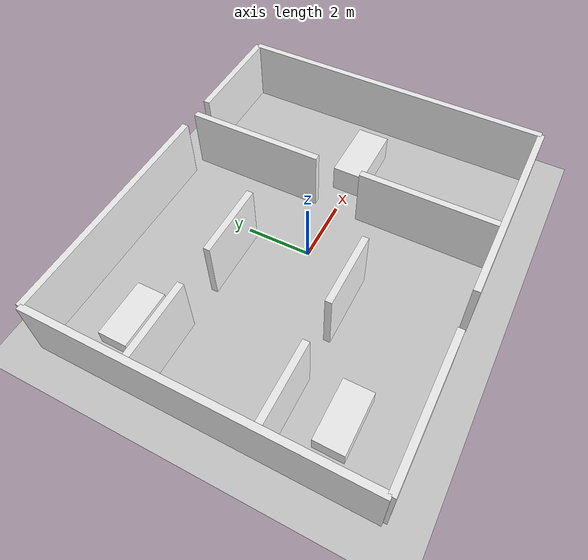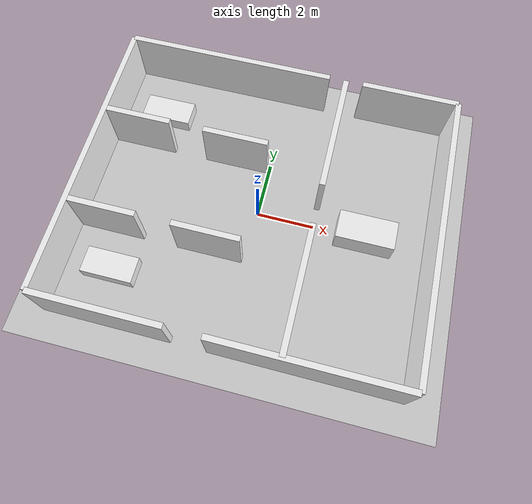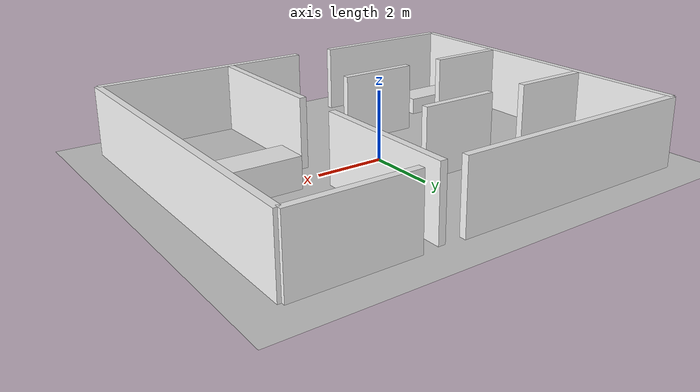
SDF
<?xml version="1.0" ?>
<sdf version="1.9">
  <world name="hospital">
    <plugin filename="gz-sim-physics-system" name="gz::sim::systems::Physics"/>
    <plugin filename="gz-sim-user-commands-system" name="gz::sim::systems::UserCommands"/>
    <plugin filename="gz-sim-scene-broadcaster-system" name="gz::sim::systems::SceneBroadcaster"/>
    <plugin filename="gz-sim-sensors-system" name="gz::sim::systems::Sensors">
      <render_engine>ogre2</render_engine>
    </plugin>

    <scene>
      <ambient>0.9 0.9 0.9 1</ambient>
      <background>0.8 0.8 0.8 1</background>
    </scene>

    <physics name="default_physics" default="true" type="ode">
      <max_step_size>0.001</max_step_size>
      <real_time_factor>1.0</real_time_factor>
    </physics>

    <light type="directional" name="sun">
      <cast_shadows>true</cast_shadows>
      <pose>0 0 10 0 0 0</pose>
      <diffuse>1.0 1.0 1.0 1</diffuse>
      <specular>0.4 0.4 0.4 1</specular>
      <direction>-0.5 0.1 -0.9</direction>
    </light>

    <model name="ground_plane">
      <static>true</static>
      <link name="link">
        <collision name="collision">
          <geometry>
            <plane>
              <normal>0 0 1</normal>
              <size>120 120</size>
            </plane>
          </geometry>
        </collision>
        <visual name="visual">
          <geometry>
            <plane>
              <normal>0 0 1</normal>
              <size>120 120</size>
            </plane>
          </geometry>
        </visual>
      </link>
    </model>

    <model name="outer_n_left">
      <static>true</static>
      <pose>-2.3 5 1 0 0 0</pose>
      <link name="link">
        <collision name="collision"><geometry><box><size>7.4 0.2 2</size></box></geometry></collision>
        <visual name="visual">
          <geometry><box><size>7.4 0.2 2</size></box></geometry>
          <material>
            <ambient>0.95 0.95 0.95 1</ambient>
            <diffuse>0.95 0.95 0.95 1</diffuse>
            <specular>0.2 0.2 0.2 1</specular>
          </material>
        </visual>
      </link>
    </model>

    <model name="outer_n_right">
      <static>true</static>
      <pose>4.3 5 1 0 0 0</pose>
      <link name="link">
        <collision name="collision"><geometry><box><size>3.4 0.2 2</size></box></geometry></collision>
        <visual name="visual">
          <geometry><box><size>3.4 0.2 2</size></box></geometry>
          <material>
            <ambient>0.95 0.95 0.95 1</ambient>
            <diffuse>0.95 0.95 0.95 1</diffuse>
            <specular>0.2 0.2 0.2 1</specular>
          </material>
        </visual>
      </link>
    </model>

    <model name="outer_s_left">
      <static>true</static>
      <pose>-3.8 -5 1 0 0 0</pose>
      <link name="link">
        <collision name="collision"><geometry><box><size>4.4 0.2 2</size></box></geometry></collision>
        <visual name="visual">
          <geometry><box><size>4.4 0.2 2</size></box></geometry>
          <material>
            <ambient>0.95 0.95 0.95 1</ambient>
            <diffuse>0.95 0.95 0.95 1</diffuse>
            <specular>0.2 0.2 0.2 1</specular>
          </material>
        </visual>
      </link>
    </model>

    <model name="outer_s_right">
      <static>true</static>
      <pose>2.8 -5 1 0 0 0</pose>
      <link name="link">
        <collision name="collision"><geometry><box><size>6.4 0.2 2</size></box></geometry></collision>
        <visual name="visual">
          <geometry><box><size>6.4 0.2 2</size></box></geometry>
          <material>
            <ambient>0.95 0.95 0.95 1</ambient>
            <diffuse>0.95 0.95 0.95 1</diffuse>
            <specular>0.2 0.2 0.2 1</specular>
          </material>
        </visual>
      </link>
    </model>

    <model name="outer_e">
      <static>true</static>
      <pose>6 0 1 0 0 0</pose>
      <link name="link">
        <collision name="collision"><geometry><box><size>0.2 10 2</size></box></geometry></collision>
        <visual name="visual">
          <geometry><box><size>0.2 10 2</size></box></geometry>
          <material>
            <ambient>0.95 0.95 0.95 1</ambient>
            <diffuse>0.95 0.95 0.95 1</diffuse>
            <specular>0.2 0.2 0.2 1</specular>
          </material>
        </visual>
      </link>
    </model>

    <model name="outer_w">
      <static>true</static>
      <pose>-6 0 1 0 0 0</pose>
      <link name="link">
        <collision name="collision"><geometry><box><size>0.2 10 2</size></box></geometry></collision>
        <visual name="visual">
          <geometry><box><size>0.2 10 2</size></box></geometry>
          <material>
            <ambient>0.95 0.95 0.95 1</ambient>
            <diffuse>0.95 0.95 0.95 1</diffuse>
            <specular>0.2 0.2 0.2 1</specular>
          </material>
        </visual>
      </link>
    </model>

    <model name="corridor_core_n">
      <static>true</static>
      <pose>2.0 2.85 1 0 0 0</pose>
      <link name="link">
        <collision name="collision"><geometry><box><size>0.2 4.3 2</size></box></geometry></collision>
        <visual name="visual">
          <geometry><box><size>0.2 4.3 2</size></box></geometry>
          <material>
            <ambient>0.95 0.95 0.95 1</ambient>
            <diffuse>0.95 0.95 0.95 1</diffuse>
            <specular>0.2 0.2 0.2 1</specular>
          </material>
        </visual>
      </link>
    </model>

    <model name="corridor_core_s">
      <static>true</static>
      <pose>2.0 -2.85 1 0 0 0</pose>
      <link name="link">
        <collision name="collision"><geometry><box><size>0.2 4.3 2</size></box></geometry></collision>
        <visual name="visual">
          <geometry><box><size>0.2 4.3 2</size></box></geometry>
          <material>
            <ambient>0.95 0.95 0.95 1</ambient>
            <diffuse>0.95 0.95 0.95 1</diffuse>
            <specular>0.2 0.2 0.2 1</specular>
          </material>
        </visual>
      </link>
    </model>

    <model name="room_divider_n_left">
      <static>true</static>
      <pose>-4.75 1.8 1 0 0 0</pose>
      <link name="link">
        <collision name="collision"><geometry><box><size>2.3 0.2 2</size></box></geometry></collision>
        <visual name="visual">
          <geometry><box><size>2.3 0.2 2</size></box></geometry>
          <material>
            <ambient>0.95 0.95 0.95 1</ambient>
            <diffuse>0.95 0.95 0.95 1</diffuse>
            <specular>0.2 0.2 0.2 1</specular>
          </material>
        </visual>
      </link>
    </model>

    <model name="room_divider_n_right">
      <static>true</static>
      <pose>-1.25 1.8 1 0 0 0</pose>
      <link name="link">
        <collision name="collision"><geometry><box><size>2.3 0.2 2</size></box></geometry></collision>
        <visual name="visual">
          <geometry><box><size>2.3 0.2 2</size></box></geometry>
          <material>
            <ambient>0.95 0.95 0.95 1</ambient>
            <diffuse>0.95 0.95 0.95 1</diffuse>
            <specular>0.2 0.2 0.2 1</specular>
          </material>
        </visual>
      </link>
    </model>

    <model name="room_divider_s_left">
      <static>true</static>
      <pose>-4.75 -1.8 1 0 0 0</pose>
      <link name="link">
        <collision name="collision"><geometry><box><size>2.3 0.2 2</size></box></geometry></collision>
        <visual name="visual">
          <geometry><box><size>2.3 0.2 2</size></box></geometry>
          <material>
            <ambient>0.95 0.95 0.95 1</ambient>
            <diffuse>0.95 0.95 0.95 1</diffuse>
            <specular>0.2 0.2 0.2 1</specular>
          </material>
        </visual>
      </link>
    </model>

    <model name="room_divider_s_right">
      <static>true</static>
      <pose>-1.25 -1.8 1 0 0 0</pose>
      <link name="link">
        <collision name="collision"><geometry><box><size>2.3 0.2 2</size></box></geometry></collision>
        <visual name="visual">
          <geometry><box><size>2.3 0.2 2</size></box></geometry>
          <material>
            <ambient>0.95 0.95 0.95 1</ambient>
            <diffuse>0.95 0.95 0.95 1</diffuse>
            <specular>0.2 0.2 0.2 1</specular>
          </material>
        </visual>
      </link>
    </model>

    <model name="bed_1">
      <static>true</static>
      <pose>-4.3 3.2 0.25 0 0 0</pose>
      <link name="link">
        <collision name="collision"><geometry><box><size>1.8 0.9 0.5</size></box></geometry></collision>
        <visual name="visual">
          <geometry><box><size>1.8 0.9 0.5</size></box></geometry>
          <material>
            <ambient>0.95 0.95 0.95 1</ambient>
            <diffuse>0.95 0.95 0.95 1</diffuse>
            <specular>0.2 0.2 0.2 1</specular>
          </material>
        </visual>
      </link>
    </model>

    <model name="bed_2">
      <static>true</static>
      <pose>-4.3 -3.2 0.25 0 0 0</pose>
      <link name="link">
        <collision name="collision"><geometry><box><size>1.8 0.9 0.5</size></box></geometry></collision>
        <visual name="visual">
          <geometry><box><size>1.8 0.9 0.5</size></box></geometry>
          <material>
            <ambient>0.95 0.95 0.95 1</ambient>
            <diffuse>0.95 0.95 0.95 1</diffuse>
            <specular>0.2 0.2 0.2 1</specular>
          </material>
        </visual>
      </link>
    </model>

    <model name="nurse_station">
      <static>true</static>
      <pose>3.8 0.0 0.45 0 0 0</pose>
      <link name="link">
        <collision name="collision"><geometry><box><size>2.0 1.0 0.9</size></box></geometry></collision>
        <visual name="visual">
          <geometry><box><size>2.0 1.0 0.9</size></box></geometry>
          <material>
            <ambient>0.95 0.95 0.95 1</ambient>
            <diffuse>0.95 0.95 0.95 1</diffuse>
            <specular>0.2 0.2 0.2 1</specular>
          </material>
        </visual>
      </link>
    </model>
  </world>
</sdf>
